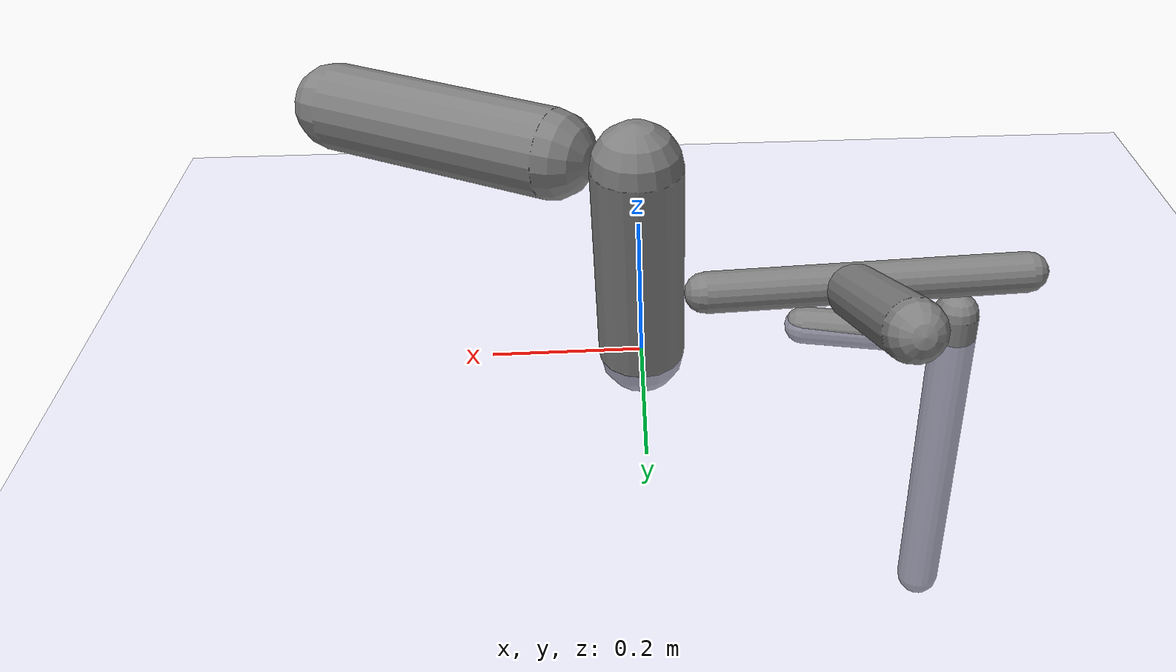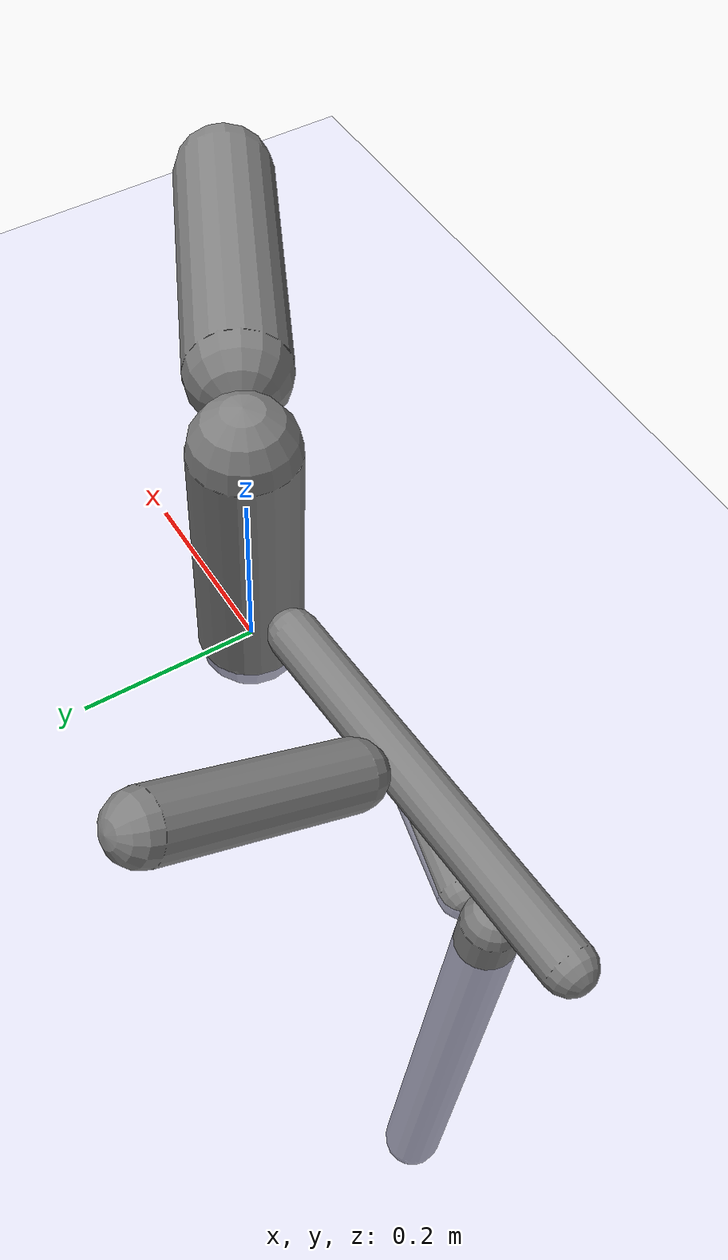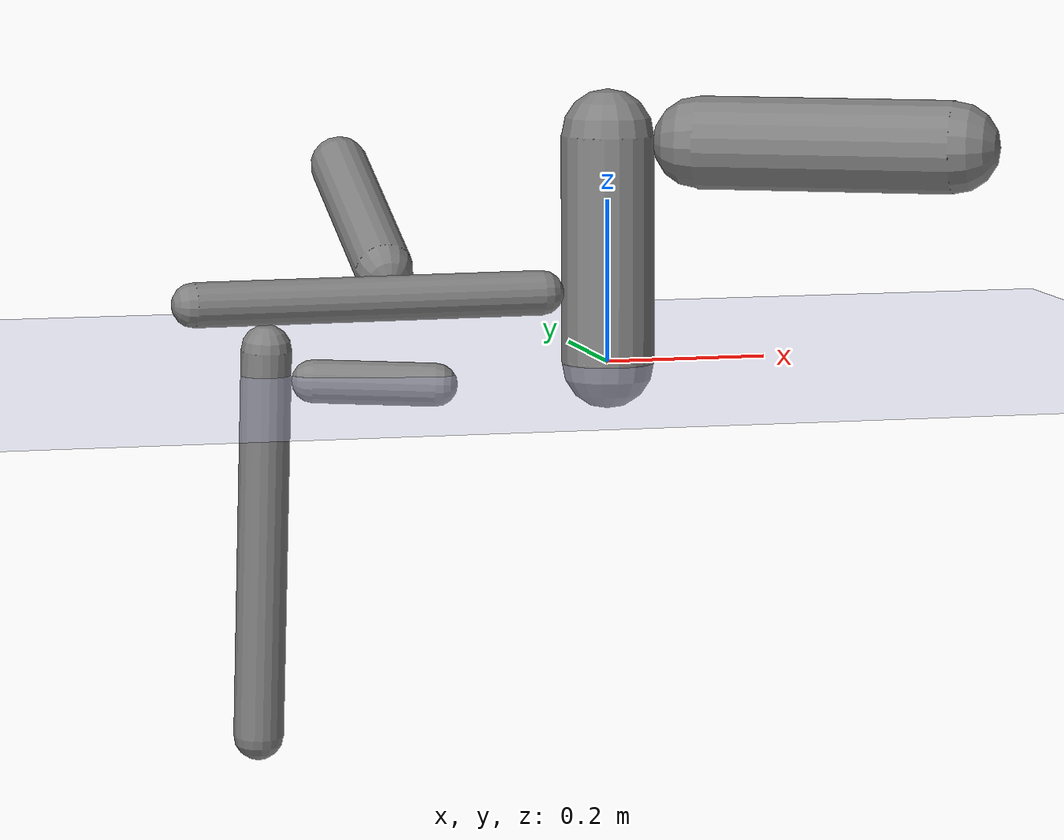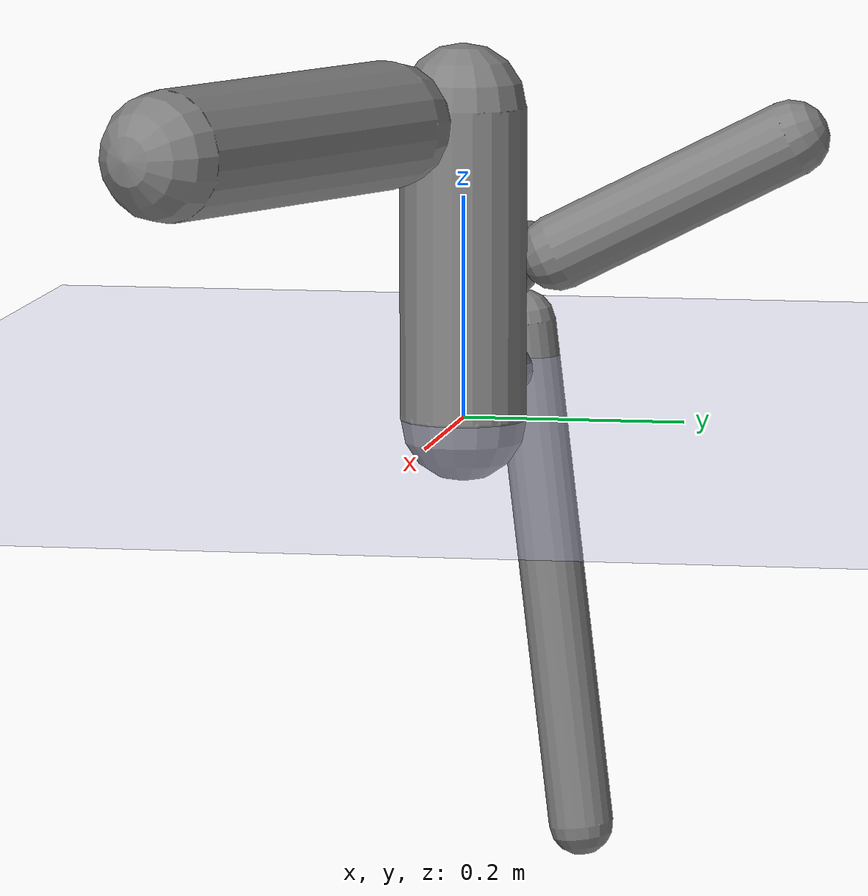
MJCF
<?xml version='1.0' encoding='UTF-8'?>
<mujoco model="robot_model">
  <worldbody>
    <light name="light" pos="0 -3 10" dir="0 0.5 -1" diffuse=".8 .8 .8" specular="0.1 0.1 0.1"/>
    <geom name="floor" type="plane" size="10.0 10.0 0.1" pos="0 0 0" rgba="0.8 0.8 1 1" contype="2" conaffinity="1"/>
    <body name="limb0" pos="0 0 0">
      <geom name="limb0_geom" type="capsule" fromto="0 0 0 0 0 0.2799738255361348" size="0.05756578340912265" density="815.1362099342192" contype="1" conaffinity="2"/>
      <site type="sphere" size="0.01" name="limb0_site0" pos="-0.08524374383368616 -0.004322901910908626 0.08847312475178644" quat="0.7071067811865476 0.035812953632730245 -0.7061992865700869 0.0"/>
      <site type="sphere" size="0.01" name="limb0_site1" pos="0.10282668581799398 -0.050852598181851366 0.2735437953981448" quat="0.7071067811865476 0.3134595625815783 0.6338320776247961 0.0"/>
      <freejoint name="limb0_root"/>
      <body name="limb1" pos="-0.08524374383368616 -0.004322901910908626 0.08847312475178644" quat="0.7071067811865476 0.035812953632730245 -0.7061992865700869 0.0">
        <geom name="limb1_geom" type="capsule" fromto="0 0 0 0 0 0.43650166521014383" size="0.02778750207957103" density="1117.318623718732" contype="1" conaffinity="2"/>
        <site type="sphere" size="0.01" name="limb1_site0" pos="-0.05878666293972737 0.0037990697587707133 0.3459041712313642" quat="0.7071067811865476 -0.045601430650075464 -0.7056348273169815 0.0"/>
        <site type="sphere" size="0.01" name="limb1_site1" pos="0.02584255199515549 0.05861365017175049 0.18420863738288804" quat="0.7071067811865476 -0.6470114650255221 0.28526507694691194 0.0"/>
        <body name="limb2" pos="-0.05878666293972737 0.0037990697587707133 0.3459041712313642" quat="0.7071067811865476 -0.045601430650075464 -0.7056348273169815 0.0">
          <geom name="limb2_geom" type="capsule" fromto="0 0 0 0 0 0.4889589051366479" size="0.03112178980737259" density="785.1601357299012" contype="1" conaffinity="2"/>
          <site type="sphere" size="0.01" name="limb2_site0" pos="-0.056191404401370305 -0.012275511703749298 0.0373755399778887" quat="0.7071067811865476 0.15091458538187963 -0.6908145828795272 0.0"/>
          <body name="limb3" pos="-0.056191404401370305 -0.012275511703749298 0.0373755399778887" quat="0.7071067811865476 0.15091458538187963 -0.6908145828795272 0.0">
            <geom name="limb3_geom" type="capsule" fromto="0 0 0 0 0 0.14919347938278688" size="0.026394834886599366" density="526.9905097920008" contype="1" conaffinity="2"/>
            <joint name="joint_limb2_limb3_0" type="hinge" axis="0 0 1" range="-36.57311519522722 36.57311519522722" damping="5.0"/>
          </body>
          <joint name="joint_limb1_limb2_0" type="hinge" axis="1 0 0" range="-60.6612845033848 60.6612845033848" damping="5.0"/>
        </body>
        <body name="limb4" pos="0.02584255199515549 0.05861365017175049 0.18420863738288804" quat="0.7071067811865476 -0.6470114650255221 0.28526507694691194 0.0">
          <geom name="limb4_geom" type="capsule" fromto="0 0 0 0 0 0.24216755055553627" size="0.036270264663257765" density="503.3892927355817" contype="1" conaffinity="2"/>
          <joint name="joint_limb1_limb4_0" type="hinge" axis="1 0 0" range="-48.18281063347258 48.18281063347258" damping="5.0"/>
        </body>
        <joint name="joint_limb0_limb1_0" type="hinge" axis="0 1 0" range="-79.43746025127588 79.43746025127588" damping="5.0"/>
      </body>
      <body name="limb5" pos="0.10282668581799398 -0.050852598181851366 0.2735437953981448" quat="0.7071067811865476 0.3134595625815783 0.6338320776247961 0.0">
        <geom name="limb5_geom" type="capsule" fromto="0 0 0 0 0 0.31417880181991165" size="0.05714827003751167" density="963.189887149966" contype="1" conaffinity="2"/>
        <joint name="joint_limb0_limb5_0" type="hinge" axis="0 1 0" range="-120.0 120.0" damping="5.0"/>
      </body>
    </body>
  </worldbody>
  <actuator>
    <position name="position_actuator_joint_limb0_limb1_0" joint="joint_limb0_limb1_0" gear="1.5835672608966855" inheritrange="1" forcerange="-6.417461942477331 6.417461942477331" forcelimited="true" kp="100.0"/>
    <position name="position_actuator_joint_limb1_limb2_0" joint="joint_limb1_limb2_0" gear="0.9597608262960533" inheritrange="1" forcerange="-6.336588271115302 6.336588271115302" forcelimited="true" kp="100.0"/>
    <position name="position_actuator_joint_limb2_limb3_0" joint="joint_limb2_limb3_0" gear="1.7107518951402347" inheritrange="1" forcerange="-1.0633834804654576 1.0633834804654576" forcelimited="true" kp="100.0"/>
    <position name="position_actuator_joint_limb1_limb4_0" joint="joint_limb1_limb4_0" gear="1.8903065910928873" inheritrange="1" forcerange="-3.0221300560545 3.0221300560545" forcelimited="true" kp="100.0"/>
    <position name="position_actuator_joint_limb0_limb5_0" joint="joint_limb0_limb5_0" gear="1.3569024006220458" inheritrange="1" forcerange="-19.289529212287043 19.289529212287043" forcelimited="true" kp="100.0"/>
  </actuator>
  <contact>
    <pair geom1="limb0_geom" geom2="limb1_geom"/>
    <pair geom1="limb1_geom" geom2="limb2_geom"/>
    <pair geom1="limb2_geom" geom2="limb3_geom"/>
    <pair geom1="limb1_geom" geom2="limb4_geom"/>
    <pair geom1="limb0_geom" geom2="limb5_geom"/>
  </contact>
</mujoco>
